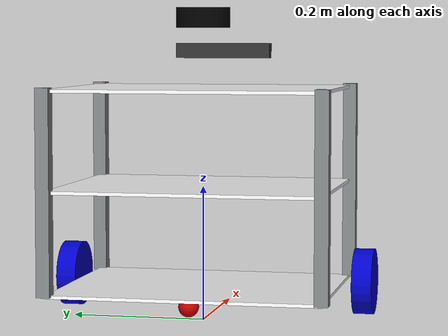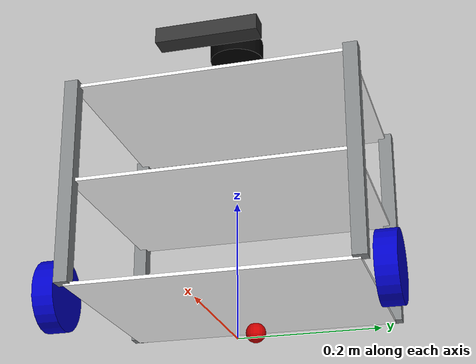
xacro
<?xml version="1.0"?>
<robot xmlns:xacro="http://www.ros.org/wiki/xacro">

<!--matierials.xacro-->
	<material name="black">
		<color rgba="0.0 0.0 0.0 1.0"/>
	</material>

	<material name="blue">
		<color rgba="0.0 0.0 0.8 1.0"/>
	</material>

	<material name="green">
		<color rgba="0.0 0.8 0.0 1.0"/>
	</material>

	<material name="grey">
		<color rgba="0.2 0.2 0.2 1.0"/>
	</material>

	<material name="orange">
		<color rgba="${255/255} ${108/255} ${10/255} 1.0"/>
	</material>

	<material name="brown">
		<color rgba="${222/255} ${207/255} ${195/255} 1.0"/>
	</material>

	<material name="red">
		<color rgba="0.8 0.0 0.0 1.0"/>
	</material>

	<material name="white">
		<color rgba="1.0 1.0 1.0 1.0"/>
	</material>

	<material name="yellow" >
    	<color rgba="1.0 1.0 0.0784313725490196 1.0" />
	</material>

	<material name="stainless">
		<color rgba="${224/255} ${223/255} ${219/255} 1.0"/>
	</material>

	<material name="aluminium">
		<color rgba="${132/255} ${135/255} ${137/255} 1.0"/>
	</material>

<!--define physical properties for robot-->
	<xacro:property name="robot_mass" value="4"/>
	<xacro:property name="body_length" value="0.3"/>
	<xacro:property name="body_width" value="0.4"/>
	<xacro:property name="body_height" value="0.3"/>
	<xacro:property name="body_mass" value="15"/>

	<!-- Frame structure properties (20x20cm grid) -->
	<xacro:property name="frame_beam_radius" value="0.008"/>
	<xacro:property name="frame_beam_mass" value="0.2"/>
	<xacro:property name="frame_beam_20" value="0.02"/>
	<xacro:property name="frame_beam_40" value="0.04"/>
	<xacro:property name="mica_sheet_thickness" value="0.005"/>
	<xacro:property name="mica_mass" value="0.2"/>

	<xacro:property name="wheel_radius" value="0.05"/>
	<xacro:property name="wheel_width" value="0.03"/>
	<xacro:property name="wheel_mass" value="0.3"/>
	<xacro:property name="wheel_separation" value="0.42"/>
	<xacro:property name="PI" value="3.1415926535897931"/>

	<xacro:macro name="cylinder_inertia" params="m r h">
		<inertia ixx="${m*(3*r*r+h*h)/12}" ixy = "0" ixz = "0"
		         iyy="${m*(3*r*r+h*h)/12}" iyz = "0"
		         izz="${m*r*r/2}"/>
	</xacro:macro>

	<xacro:macro name="box_inertia" params="m l w h">
		<inertia ixx="${m*(h*h+l*l)/12}" ixy = "0" ixz = "0"
		         iyy="${m*(w*w+h*h)/12}" iyz = "0"
		         izz="${m*(w*w+l*l)/12}" />
	</xacro:macro>

<!--base link-->
    <joint name="base_footprint_joint" type="fixed">
       	<origin xyz="0.0 0.0 ${wheel_radius}" rpy="0.0 0.0 0.0"/>
        <parent link="base_footprint"/>
        <child link="base_link"/>
    </joint>

    <link name="base_footprint">
    	<origin xyz="0.0 0.0 0.0"/>
    </link>

	<link name="base_link">
       	<origin xyz="0.0 0.0 0.0"/>
       	<inertial>
       		<origin xyz="0.0 0.0 0.0" rpy="0.0 0.0 0.0"/>
       		<mass value="${robot_mass}"/>
       		<inertia ixx="0.5" ixy="0.0" ixz="0.0" iyy="0.5" iyz="0.0" izz="0.5"/>
       	</inertial>
    </link>

<!--chassis link - Frame Structure with Grid-->
    <joint name="chassis_joint" type="fixed">
        <parent link="base_link"/>
        <child link="chassis"/>
        <origin xyz="0.0 0.0 0.0"/>
    </joint>

    <link name="chassis">
        <visual>
            <origin xyz="0.0 0.0 0.0" rpy="0.0 0.0 0.0"/>
            <geometry>
                 <box size="${body_length} ${body_width} ${mica_sheet_thickness}"/>
            </geometry>
            <material name="white"/>
        </visual>

        <collision>
            <origin xyz="0.0 0.0 0.0" rpy="0.0 0.0 0.0"/>
            <geometry>
                 <box size="${body_length} ${body_width} ${mica_sheet_thickness}"/>
            </geometry>
        </collision>

        <inertial>
            <origin xyz="0.0 0.0 0.0" rpy="0.0 0.0 0.0"/>
            <mass value="${mica_mass}"/>
            <xacro:box_inertia m="${mica_mass}" l="${body_length}" w="${body_width}" h="${mica_sheet_thickness}"/>
        </inertial>
    </link>

    <!-- Vertical support posts (corners) -->
    <!-- Front Left Post -->
    <joint name="post_fl_joint" type="fixed">
        <parent link="base_link"/>
        <child link="post_fl"/>
        <origin xyz="0.15 -0.2 0.15"/>
    </joint>

    <link name="post_fl">
        <visual>
            <origin xyz="0.0 0.0 0.0" rpy="0.0 0.0 0.0"/>
            <geometry>
                <box size="${frame_beam_20} ${frame_beam_20} ${body_height}"/>
            </geometry>
            <material name="aluminium"/>
        </visual>

        <collision>
            <origin xyz="0.0 0.0 0.0" rpy="0.0 0.0 0.0"/>
            <geometry>
                <box size="${frame_beam_20} ${frame_beam_20} ${body_height}"/>
            </geometry>
        </collision>

        <inertial>
            <origin xyz="0.0 0.0 0.0" rpy="0.0 0.0 0.0"/>
            <mass value="${frame_beam_mass}"/>
            <xacro:box_inertia m="${frame_beam_mass}" l="${frame_beam_20}" w="${frame_beam_20}" h="${body_height}"/>
        </inertial>
    </link>

    <!-- Front Right Post -->
    <joint name="post_fr_joint" type="fixed">
        <parent link="base_link"/>
        <child link="post_fr"/>
        <origin xyz="0.15 0.2 0.15"/>
    </joint>

    <link name="post_fr">
        <visual>
            <origin xyz="0.0 0.0 0.0" rpy="0.0 0.0 0.0"/>
            <geometry>
                <box size="${frame_beam_20} ${frame_beam_20} ${body_height}"/>
            </geometry>
            <material name="aluminium"/>
        </visual>

        <collision>
            <origin xyz="0.0 0.0 0.0" rpy="0.0 0.0 0.0"/>
            <geometry>
                <box size="${frame_beam_20} ${frame_beam_20} ${body_height}"/>
            </geometry>
        </collision>

        <inertial>
            <origin xyz="0.0 0.0 0.0" rpy="0.0 0.0 0.0"/>
            <mass value="${frame_beam_mass}"/>
            <xacro:box_inertia m="${frame_beam_mass}" l="${frame_beam_20}" w="${frame_beam_20}" h="${body_height}"/>
        </inertial>
    </link>

    <!-- Back Left Post -->
    <joint name="post_bl_joint" type="fixed">
        <parent link="base_link"/>
        <child link="post_bl"/>
        <origin xyz="-0.15 -0.2 0.15"/>
    </joint>

    <link name="post_bl">
        <visual>
            <origin xyz="0.0 0.0 0.0" rpy="0.0 0.0 0.0"/>
            <geometry>
                <box size="${frame_beam_20} ${frame_beam_20} ${body_height}"/>
            </geometry>
            <material name="aluminium"/>
        </visual>

        <collision>
            <origin xyz="0.0 0.0 0.0" rpy="0.0 0.0 0.0"/>
            <geometry>
                <box size="${frame_beam_20} ${frame_beam_20} ${body_height}"/>
            </geometry>
        </collision>

        <inertial>
            <origin xyz="0.0 0.0 0.0" rpy="0.0 0.0 0.0"/>
            <mass value="${frame_beam_mass}"/>
            <xacro:box_inertia m="${frame_beam_mass}" l="${frame_beam_20}" w="${frame_beam_20}" h="${body_height}"/>
        </inertial>
    </link>

    <!-- Back Right Post -->
    <joint name="post_br_joint" type="fixed">
        <parent link="base_link"/>
        <child link="post_br"/>
        <origin xyz="-0.15 0.2 0.15"/>
    </joint>

    <link name="post_br">
        <visual>
            <origin xyz="0.0 0.0 0.0" rpy="0.0 0.0 0.0"/>
            <geometry>
                <box size="${frame_beam_20} ${frame_beam_20} ${body_height}"/>
            </geometry>
            <material name="aluminium"/>
        </visual>

        <collision>
            <origin xyz="0.0 0.0 0.0" rpy="0.0 0.0 0.0"/>
            <geometry>
                <box size="${frame_beam_20} ${frame_beam_20} ${body_height}"/>
            </geometry>
        </collision>

        <inertial>
            <origin xyz="0.0 0.0 0.0" rpy="0.0 0.0 0.0"/>
            <mass value="${frame_beam_mass}"/>
            <xacro:box_inertia m="${frame_beam_mass}" l="${frame_beam_20}" w="${frame_beam_20}" h="${body_height}"/>
        </inertial>
    </link>

    <!-- Middle vertical posts (20x20cm grid) -->
    <!-- Mica layers at different heights -->
    <!-- Middle Layer -->
    <joint name="layer_middle_joint" type="fixed">
        <parent link="base_link"/>
        <child link="layer_middle"/>
        <origin xyz="0.0 0.0 0.15" rpy="0.0 0.0 0.0"/>
    </joint>

    <link name="layer_middle">
        <visual>
            <origin xyz="0.0 0.0 0.0" rpy="0.0 0.0 0.0"/>
            <geometry>
                 <box size="${body_length} ${body_width} ${mica_sheet_thickness}"/>
            </geometry>
            <material name="white"/>
        </visual>

        <collision>
            <origin xyz="0.0 0.0 0.0" rpy="0.0 0.0 0.0"/>
            <geometry>
                 <box size="${body_length} ${body_width} ${mica_sheet_thickness}"/>
            </geometry>
        </collision>

        <inertial>
            <origin xyz="0.0 0.0 0.0" rpy="0.0 0.0 0.0"/>
            <mass value="${mica_mass}"/>
            <xacro:box_inertia m="${mica_mass}" l="${body_length}" w="${body_width}" h="${mica_sheet_thickness}"/>
        </inertial>
    </link>

    <!-- Top Layer -->
    <joint name="layer_top_joint" type="fixed">
        <parent link="base_link"/>
        <child link="layer_top"/>
        <origin xyz="0.0 0.0 0.295" rpy="0.0 0.0 0.0"/>
    </joint>

    <link name="layer_top">
        <visual>
            <origin xyz="0.0 0.0 0.0" rpy="0.0 0.0 0.0"/>
            <geometry>
                 <box size="${body_length} ${body_width} ${mica_sheet_thickness}"/>
            </geometry>
            <material name="white"/>
        </visual>

        <collision>
            <origin xyz="0.0 0.0 0.0" rpy="0.0 0.0 0.0"/>
            <geometry>
                 <box size="${body_length} ${body_width} ${mica_sheet_thickness}"/>
            </geometry>
        </collision>

        <inertial>
            <origin xyz="0.0 0.0 0.0" rpy="0.0 0.0 0.0"/>
            <mass value="${mica_mass}"/>
            <xacro:box_inertia m="${mica_mass}" l="${body_length}" w="${body_width}" h="${mica_sheet_thickness}"/>
        </inertial>
    </link>

<!--right wheel-->
    <joint name="right_wheel_joint" type="continuous">
        <parent link="base_link"/>
        <child link="right_wheel"/>
        <origin xyz="0.1 -0.23 0.0" rpy="${PI/2} 0 0"/>
        <axis xyz="0 0 -1"/>
    </joint>

    <link name="right_wheel">
        <visual>
           	<geometry>
             	<cylinder radius="${wheel_radius}" length="${wheel_width}"/>
           	</geometry>
           		<material name="blue"/>
        </visual>

        <collision>
           	<geometry>
             	<cylinder radius="${wheel_radius}" length="${wheel_width}"/>
           	</geometry>
        </collision>

       	<inertial>
            <mass value="${wheel_mass}"/>
            <xacro:cylinder_inertia m="${wheel_mass}" r="${wheel_radius}" h="${wheel_width}"/>
        	</inertial>
    </link>

<!--left wheel-->
	<joint name="left_wheel_joint" type="continuous">
       	<parent link="base_link"/>
        <child link="left_wheel"/>
        <origin xyz="0.1 0.23 0.0" rpy="${-PI/2} 0.0 0.0"/>
        <axis xyz="0 0 1"/>
    </joint>

	<link name="left_wheel">
        <visual>
           	<geometry>
             	<cylinder radius="${wheel_radius}" length="${wheel_width}"/>
           	</geometry>
           	<material name="blue"/>
        </visual>

        <collision>
           	<geometry>
             	<cylinder radius="${wheel_radius}" length="${wheel_width}"/>
           	</geometry>
        </collision>

        <inertial>
            <mass value="${wheel_mass}"/>
            <xacro:cylinder_inertia m="${wheel_mass}" r="${wheel_radius}" h="${wheel_width}"/>
        </inertial>
	</link>

<!--caster wheel - free castor at back-->
	<joint name="caster_wheel_joint" type="fixed">
		<parent link="base_link"/>
		<child link="caster_wheel"/>
		<origin xyz="-0.1 0.0 -0.015"/>
	</joint>

	<link name="caster_wheel">
		<visual>
			<geometry>
				<sphere radius="0.015"/>
			</geometry>
			<material name="red"/>
		</visual>

		<collision>
			<geometry>
				<sphere radius="0.035"/>
			</geometry>
		</collision>

		<inertial>
			<mass value="0.08"/>
			<inertia ixx="0.0001" ixy="0.0" ixz="0.0" iyy="0.0001" iyz="0.0" izz="0.0001"/>
		</inertial>
	</link>

<!--lidar-->
	<joint name="joint_scan" type="fixed">
		<origin xyz="0.0 0.0 0.4" rpy="0 0 0"/>
		<parent link="base_link"/>
		<child link="laser"/>
	</joint>

    <link name="laser">
        <visual>
            <origin xyz="0.0 0.0 0.0" rpy="0.0 0.0 0.0"/>
            <geometry>
                <cylinder radius="0.04" length="0.03"/>
            </geometry>
            <material name="black"/>
        </visual>

        <inertial>
            <origin xyz="0.0 0.0 0.0" rpy="0.0 0.0 0.0"/>
            <mass value="0.114"/>
            <inertia ixx="0.01" ixy="0.0" ixz="0.0" iyy="0.01" iyz="0.0" izz="0.01"/>
        </inertial>
    </link>

	<!-- Thân ZED2 (body) -->
	<link name="zed2_link">
		<visual>
			<origin xyz="0 0 0" rpy="0 0 0"/>
			<geometry>
				<!-- 146.5 x 30 x 23 mm -->
				<box size="0.03 0.1465 0.023"/>
			</geometry>
			<material name="grey"/>
		</visual>
		<collision>
			<origin xyz="0 0 0" rpy="0 0 0"/>
			<geometry>
				<box size="0.03 0.1465 0.023"/>
			</geometry>
		</collision>
		<inertial>
			<mass value="0.5"/>
			<origin xyz="0 0 0" rpy="0 0 0"/>
			<inertia ixx="0.01" iyy="0.01" izz="0.01" ixy="0" ixz="0" iyz="0"/>
		</inertial>
	</link>

	<joint name="zed2_joint" type="fixed">
		<parent link="base_link"/>
		<child link="zed2_link"/>
		<!-- Camera at 15cm from center forward on robot -->
		<origin xyz="0.15 0.0 0.35"/>
	</joint>

	<!-- Left Camera (U26) -->
	<link name="zed2_left_camera_frame"/>
	<joint name="zed2_left_camera_joint" type="fixed">
		<parent link="zed2_link"/>
		<child link="zed2_left_camera_frame"/>
		<!-- 9.3 mm từ mép trái: -0.07325 m so với tâm -->
		<origin xyz="0 -0.07325 0"/>
	</joint>

	<!-- Right Camera (U36) -->
	<link name="zed2_right_camera_frame"/>
	<joint name="zed2_right_camera_joint" type="fixed">
		<parent link="zed2_link"/>
		<child link="zed2_right_camera_frame"/>
		<!-- 129.3 mm từ mép trái: +0.07325 m so với tâm -->
		<origin xyz="0 0.07325 0"/>
	</joint>
	<!--  End ZED2 -->

	<!-- IMU (trên mặt robot, chính giữa thân) -->
    <link name="imu_link"/>

    <joint name="imu_joint" type="fixed">
        <parent link="base_link"/>
        <child link="imu_link"/>
        <origin xyz="0.0 0.0 0.35" rpy="0 0 0"/>
    </joint>
    <!-- End IMU -->

</robot>
